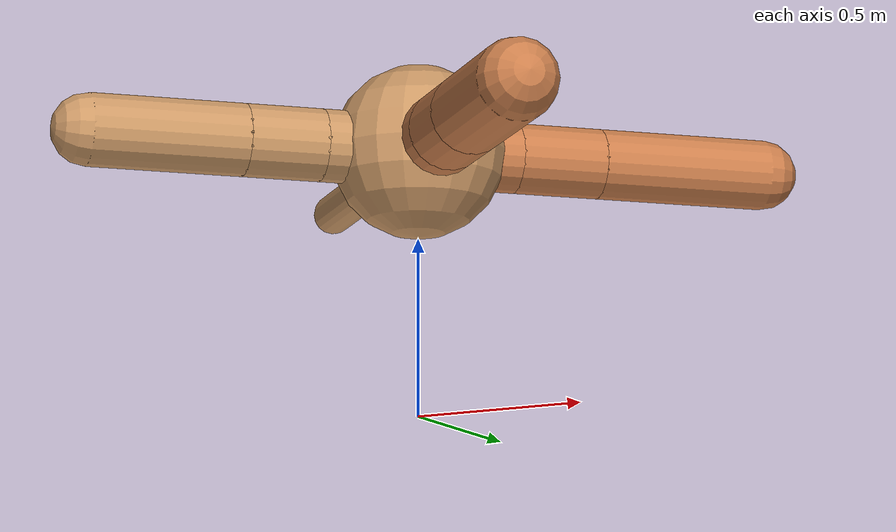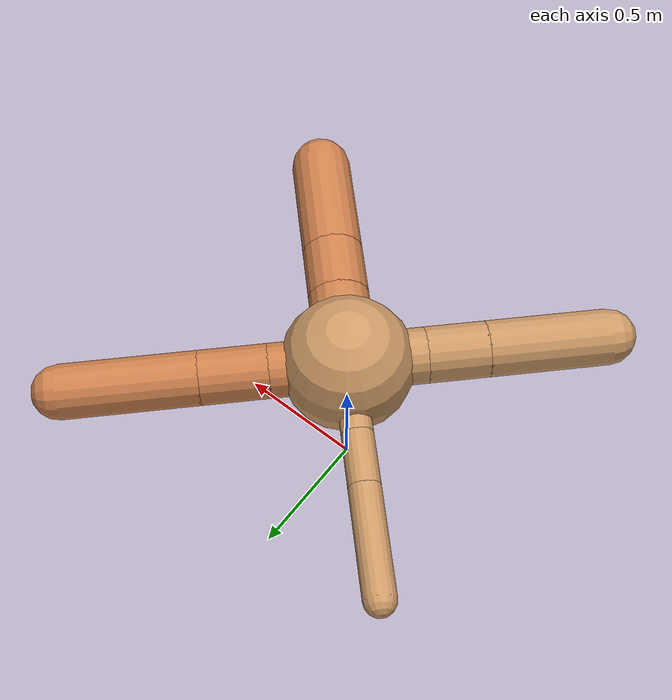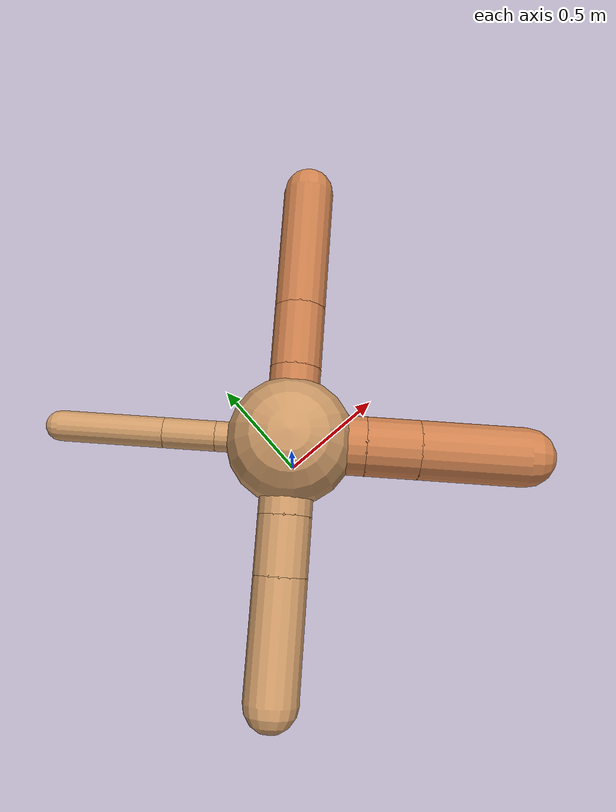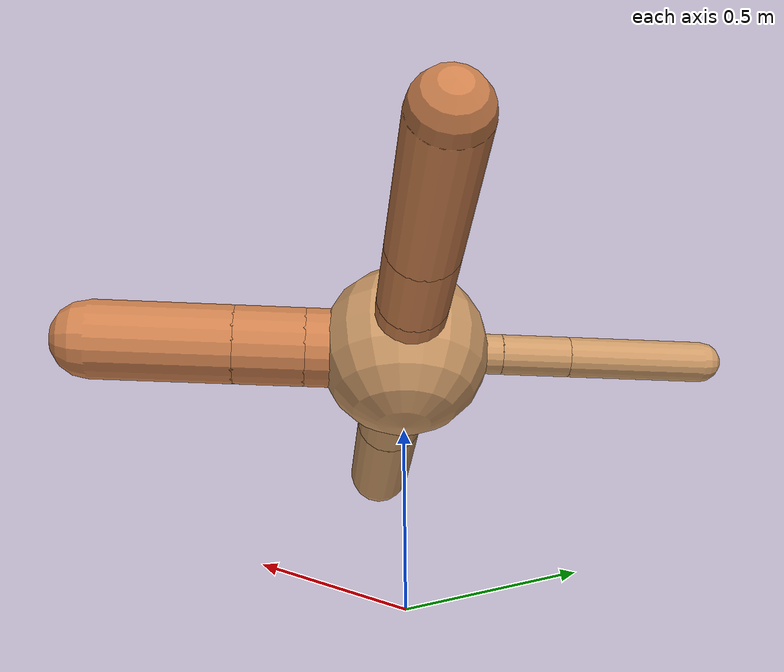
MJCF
<?xml version="1.0" ?>
<mujoco model="ant">

	<compiler angle="degree" coordinate="local" inertiafromgeom="true"/>

	<option integrator="RK4" timestep="0.01"/>

	<custom>

		<numeric data="0.0 0.0 0.55 1.0 0.0 0.0 0.0 0.0 1.0 0.0 -1.0 0.0 -1.0 0.0 1.0" name="init_qpos"/>

	</custom>

	<default>

		<joint armature="1" damping="1" limited="true"/>

		<geom conaffinity="0" condim="3" density="5.0" friction="1.5 0.1 0.1" margin="0.01" rgba="0.8 0.6 0.4 1"/>

	</default>

	<worldbody>

		<body name="torso" pos="0 0 0.75">

			<geom name="torso_geom" pos="0 0 0" size="0.2452670756575856" type="sphere"/>

			<!--joint armature="0" damping="0" limited="false" margin="0.01" name="root" pos="0 0 0" type="free"/-->

			<body name="front_left_leg" pos="0 0 0">

				<geom fromto="0 0 0 0.2 0.2 0" name="aux_1_geom" size="0.09920545696646285" type="capsule" rgba=".8 .5 .3 1"/>

				<body name="aux_1" pos="0.2 0.2 0">

					<joint axis="0 0 1" name="hip_1" pos="0.0 0.0 0.0" range="-40 40" type="hinge"/>

					<geom fromto="0 0 0 0.17489085704738266 0.17489085704738266 0" name="left_leg_geom" size="0.09920545696646285" type="capsule" rgba=".8 .5 .3 1"/>

					<body pos="0.17489085704738266 0.17489085704738266 0" name="front_left_foot">

						<joint axis="-1 1 0" name="ankle_1" pos="0.0 0.0 0.0" range="30 100" type="hinge"/>

						<geom fromto="0 0 0 0.34978171409476533 0.34978171409476533 0" name="left_ankle_geom" size="0.09920545696646285" type="capsule" rgba=".8 .5 .3 1"/>

					</body>

				</body>

			</body>

			<body name="front_right_leg" pos="0 0 0">

				<geom fromto="0 0 0 -0.2 0.2 0" name="aux_2_geom" size="0.058054912622157215" type="capsule"/>

				<body name="aux_2" pos="-0.2 0.2 0">

					<joint axis="0 0 1" name="hip_2" pos="0.0 0.0 0.0" range="-40 40" type="hinge"/>

					<geom fromto="0 0 0 -0.13907401564532287 0.13907401564532287 0" name="right_leg_geom" size="0.058054912622157215" type="capsule"/>

					<body pos="-0.13907401564532287 0.13907401564532287 0" name="front_right_foot">

						<joint axis="1 1 0" name="ankle_2" pos="0.0 0.0 0.0" range="-100 -30" type="hinge"/>

						<geom fromto="0 0 0 -0.27814803129064575 0.27814803129064575 0" name="right_ankle_geom" size="0.058054912622157215" type="capsule"/>

					</body>

				</body>

			</body>

			<body name="left_back_leg" pos="0 0 0">

				<geom fromto="0 0 0 -0.2 -0.2 0" name="aux_3_geom" size="0.10228457311282967" type="capsule"/>

				<body name="aux_3" pos="-0.2 -0.2 0">

					<joint axis="0 0 1" name="hip_3" pos="0.0 0.0 0.0" range="-40 40" type="hinge"/>

					<geom fromto="0 0 0 -0.156693286954109 -0.156693286954109 0" name="back_leg_geom" size="0.10228457311282967" type="capsule"/>

					<body pos="-0.156693286954109 -0.156693286954109 0" name="left_back_foot">

						<joint axis="-1 1 0" name="ankle_3" pos="0.0 0.0 0.0" range="-100 -30" type="hinge"/>

						<geom fromto="0 0 0 -0.313386573908218 -0.313386573908218 0" name="third_ankle_geom" size="0.10228457311282967" type="capsule"/>

					</body>

				</body>

			</body>

			<body name="right_back_leg" pos="0 0 0">

				<geom fromto="0 0 0 0.2 -0.2 0" name="aux_4_geom" size="0.11341461403285999" type="capsule" rgba=".8 .5 .3 1"/>

				<body name="aux_4" pos="0.2 -0.2 0">

					<joint axis="0 0 1" name="hip_4" pos="0.0 0.0 0.0" range="-40 40" type="hinge"/>

					<geom fromto="0 0 0 0.14295101180732558 -0.14295101180732558 0" name="rightback_leg_geom" size="0.11341461403285999" type="capsule" rgba=".8 .5 .3 1"/>

					<body pos="0.14295101180732558 -0.14295101180732558 0" name="right_back_foot">

						<joint axis="1 1 0" name="ankle_4" pos="0.0 0.0 0.0" range="30 100" type="hinge"/>

						<geom fromto="0 0 0 0.28590202361465117 -0.28590202361465117 0" name="fourth_ankle_geom" size="0.11341461403285999" type="capsule" rgba=".8 .5 .3 1"/>

					</body>

				</body>

			</body>

		</body>

	</worldbody>

	<actuator>

		<motor ctrllimited="true" ctrlrange="-1.0 1.0" joint="hip_4" gear="150"/>

		<motor ctrllimited="true" ctrlrange="-1.0 1.0" joint="ankle_4" gear="150"/>

		<motor ctrllimited="true" ctrlrange="-1.0 1.0" joint="hip_1" gear="150"/>

		<motor ctrllimited="true" ctrlrange="-1.0 1.0" joint="ankle_1" gear="150"/>

		<motor ctrllimited="true" ctrlrange="-1.0 1.0" joint="hip_2" gear="150"/>

		<motor ctrllimited="true" ctrlrange="-1.0 1.0" joint="ankle_2" gear="150"/>

		<motor ctrllimited="true" ctrlrange="-1.0 1.0" joint="hip_3" gear="150"/>

		<motor ctrllimited="true" ctrlrange="-1.0 1.0" joint="ankle_3" gear="150"/>

	</actuator>

</mujoco>
